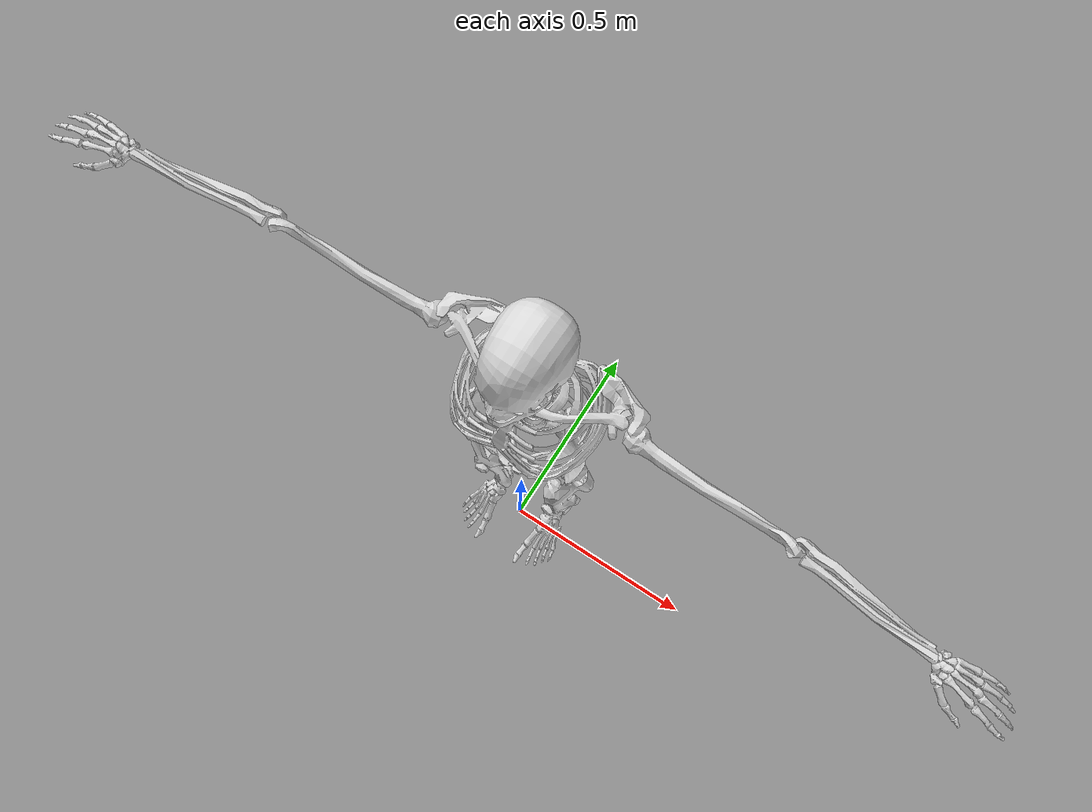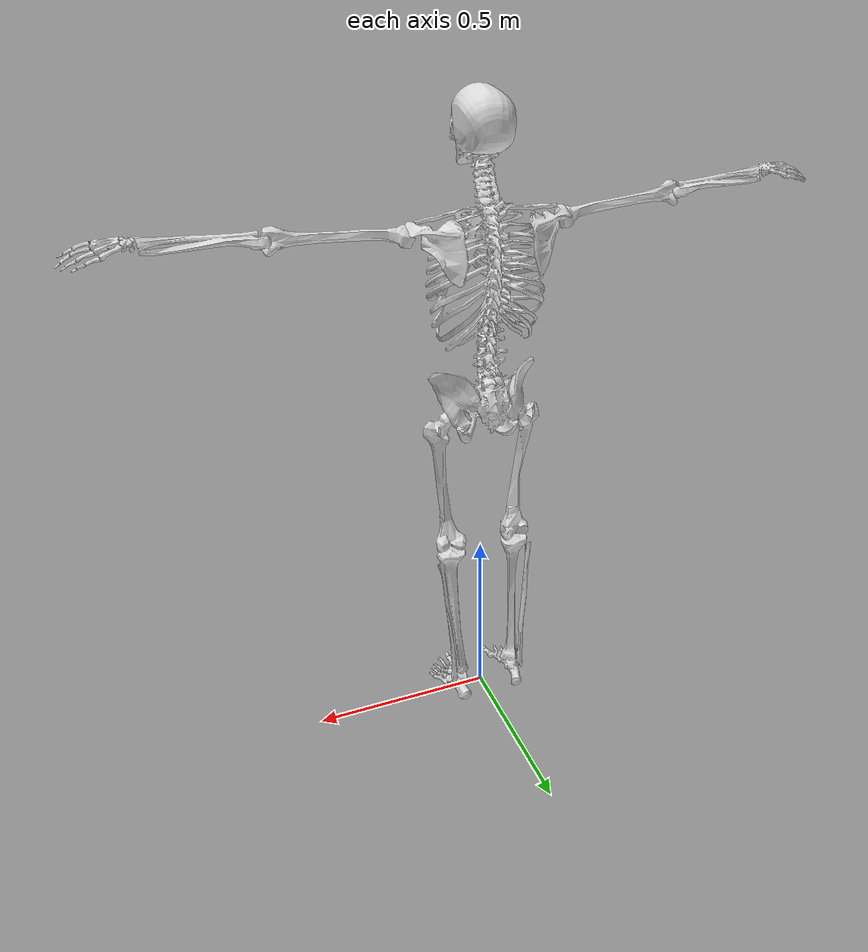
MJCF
<mujoco model="rig">
  <compiler coordinate="local" angle="degree" meshdir="../mesh/bio"/>
  <default>
    <joint damping="0.0" armature="0.01" stiffness="0" limited="true" />
    <geom rgba="0.85 0.85 0.85 1" contype="2" conaffinity="1" condim="3" />
  </default>
  <asset>
    <texture type="skybox" builtin="gradient" rgb1=".4 .5 .6" rgb2="0 0 0" width="100" height="100" />
    <texture builtin="checker" height="100" name="texplane" rgb1="0 0 0" rgb2="0.8 0.8 0.8" type="2d" width="100" />
    <material name="MatPlane" reflectance="0.5" shininess="1" specular="1" texrepeat="60 60" texture="texplane" />
    <material name="MatBone" rgba="0.9 0.9 0.9 1" />
    <mesh name="Pelvis_mesh" file="Pelvis.obj"/>
    <mesh name="Torso_mesh" file="Torso.obj" scale="1 1 1" />
    <mesh name="Spine_mesh" file="Spine.obj" scale="1 1 1" />
    <mesh name="Neck_mesh" file="Neck.obj" scale="1 1 1" />
    <mesh name="Skull_mesh" file="Skull.obj" scale="1 1 1" />
    <mesh name="L_Shoulder_mesh" file="L_Shoulder.obj" scale="1 1 1" />
    <mesh name="R_Shoulder_mesh" file="R_Shoulder.obj" scale="1 1 1" />
    <mesh name="L_Humerus_mesh" file="L_Humerus.obj" scale="1 1 1" />
    <mesh name="R_Humerus_mesh" file="R_Humerus.obj" scale="1 1 1" />
    <mesh name="L_Radius_mesh" file="L_Radius.obj" scale="1 1 1" />
    <mesh name="R_Radius_mesh" file="R_Radius.obj" scale="1 1 1" />
    <mesh name="L_Hand_mesh" file="L_Hand.obj" scale="1 1 1" />
    <mesh name="R_Hand_mesh" file="R_Hand.obj" scale="1 1 1" />
    <mesh name="L_Femur_mesh" file="L_Femur.obj" scale="1 1 1" />
    <mesh name="R_Femur_mesh" file="R_Femur.obj" scale="1 1 1" />
    <mesh name="L_Tibia_mesh" file="L_Tibia.obj" scale="1 1 1" />
    <mesh name="R_Tibia_mesh" file="R_Tibia.obj" scale="1 1 1" />
    <mesh name="L_Talus_mesh" file="L_Talus.obj" scale="1 1 1" />
    <mesh name="R_Talus_mesh" file="R_Talus.obj" scale="1 1 1" />
    <mesh name="L_FootThumb_mesh" file="L_FootThumb.obj" scale="1 1 1" />
    <mesh name="R_FootThumb_mesh" file="R_FootThumb.obj" scale="1 1 1" />
    <mesh name="L_FootPinky_mesh" file="L_FootPinky.obj" scale="1 1 1" />
    <mesh name="R_FootPinky_mesh" file="R_FootPinky.obj" scale="1 1 1" />
  </asset>
  <worldbody>

    <body name="Pelvis" pos="0 0.0308 0.9809" euler="90 0 0">
      <freejoint name="Pelvis" />
      <geom name="Pelvis_geom" type="box" size="0.104125 0.072683 0.064684" pos="0 0 0" mass="3.8" rgba="0 0 0 0" group="1" contype="2" conaffinity="1" />
      <geom name="Pelvis_visual" type="mesh" mesh="Pelvis_mesh" material="MatBone" contype="0" conaffinity="0" pos="0 0 0" euler="0 0 0" />
      <body name="Spine" pos="0 0.0866 -0.0126" euler="0 0 0">
        <joint name="Spine_x" type="hinge" axis="1 0 0" stiffness="1000" damping="100" armature="0.02" range="-30 60" />
        <joint name="Spine_y" type="hinge" axis="0 1 0" stiffness="1000" damping="100" armature="0.02" range="-30 30" />
        <joint name="Spine_z" type="hinge" axis="0 0 1" stiffness="1000" damping="100" armature="0.02" range="-20 20" />
        <geom name="Spine_geom" type="box" size="0.058525 0.048794 0.049209" mass="3" rgba="0 0 0 0" group="1" contype="2" conaffinity="1" />
        <geom name="Spine_visual" type="mesh" mesh="Spine_mesh" material="MatBone" contype="0" conaffinity="0" pos="0 0 0" />

        <body name="Torso" pos="0 0.1086 -0.0064" euler="0 0 0">
          <joint name="Torso_x" type="hinge" axis="1 0 0" stiffness="1000" damping="100" armature="0.02" range="-30 60" />
          <joint name="Torso_y" type="hinge" axis="0 1 0" stiffness="1000" damping="100" armature="0.02" range="-30 30" />
          <joint name="Torso_z" type="hinge" axis="0 0 1" stiffness="1000" damping="100" armature="0.02" range="-20 20" />
          <geom name="Torso_geom" type="box" size="0.089909 0.109027 0.066871" mass="9.6" rgba="0 0 0 0" group="1" contype="2" conaffinity="1" />
          <geom name="Torso_visual" type="mesh" mesh="Torso_mesh" material="MatBone" contype="0" conaffinity="0" pos="0 0 0" />

          <body name="Neck" pos="0 0.3083 0.0062" euler="0 0 0">
            <joint name="Neck_x" type="hinge" axis="1 0 0" stiffness="500" damping="50" armature="0.02" range="-30 45" />
            <joint name="Neck_y" type="hinge" axis="0 1 0" stiffness="500" damping="50" armature="0.02" range="-30 45" />
            <joint name="Neck_z" type="hinge" axis="0 0 1" stiffness="500" damping="50" armature="0.02" range="-30 120" />
            <geom name="Neck_geom" type="box" size="0.039657 0.036389 0.032590" mass="0.244" rgba="0 0 0 0" group="1" contype="2" conaffinity="1" />
            <geom name="Neck_visual" type="mesh" mesh="Neck_mesh" material="MatBone" contype="0" conaffinity="0" pos="0 0 0" />

            <body name="Head" pos="0 0.0808 0.035" euler="0 0 0">
              <joint name="Head_x" type="hinge" axis="1 0 0" stiffness="500" damping="50" armature="0.02" range="-30 45" />
              <joint name="Head_y" type="hinge" axis="0 1 0" stiffness="500" damping="50" armature="0.02" range="-30 45" />
              <joint name="Head_z" type="hinge" axis="0 0 1" stiffness="500" damping="50" armature="0.02" range="-30 120" />
              <geom name="Head_geom" type="box" size="0.056457 0.057178 0.058313" pos="0 0.1 0" mass="1" rgba="0 0 0 0" group="1" contype="2" conaffinity="1" />
              <geom name="Head_visual" type="mesh" mesh="Skull_mesh" material="MatBone" contype="0" conaffinity="0" pos="0 0 0" />
            </body>
          </body>

          <body name="ShoulderL" pos="0.0147 0.2774 0.0117" euler="0 0 0">
            <joint name="L_Shoulder_x" type="hinge" axis="1 0 0" stiffness="500" damping="50" armature="0.01" range="-30 30" />
            <joint name="L_Shoulder_y" type="hinge" axis="0 1 0" stiffness="500" damping="50" armature="0.01" range="-30 30" />
            <joint name="L_Shoulder_z" type="hinge" axis="0 0 1" stiffness="500" damping="50" armature="0.01" range="-30 30" />
            <geom name="ShoulderL_geom" type="capsule" fromto="0 0 0 0.1848 -0.0185 0.0028" size="0.0517" mass="0.718" rgba="0 0 0 0" group="1" contype="2" conaffinity="1" />
            <geom name="ShoulderL_visual" type="mesh" mesh="L_Shoulder_mesh" material="MatBone" contype="0" conaffinity="0" pos="0 0 0" />

            <body name="ArmL" pos="0.1848 -0.0185 0.0028" euler="0 0 0">
              <joint name="L_Elbow_x" type="hinge" axis="1 0 0" stiffness="500" damping="50" armature="0.01" range="-120 120" />
              <joint name="L_Elbow_y" type="hinge" axis="0 1 0" stiffness="500" damping="50" armature="0.01" range="-120 120" />
              <joint name="L_Elbow_z" type="hinge" axis="0 0 1" stiffness="500" damping="50" armature="0.01" range="-120 120" />
              <geom name="ArmL_geom" type="capsule" fromto="0 0 0 0.3239 0.0257 0.0248" size="0.0405" mass="0.6" rgba="0 0 0 0" group="1" contype="2" conaffinity="1" />
              <geom name="ArmL_visual" type="mesh" mesh="L_Humerus_mesh" material="MatBone" contype="0" conaffinity="0" pos="0 0 0" />

              <body name="ForeArmL" pos="0.3239 0.0257 0.0248" euler="0 0 0">
                <joint name="ForeArmL_y" type="hinge" axis="0 1 0" stiffness="500" damping="50" armature="0.01" range="-150 0" />
                <geom name="ForeArmL_geom" type="capsule" fromto="0 0 0 0.2868 0.0087 0.0299" size="0.0318" mass="0.3" rgba="0 0 0 0" group="1" contype="2" conaffinity="1" />
                <geom name="ForeArmL_visual" type="mesh" mesh="L_Radius_mesh" material="MatBone" contype="0" conaffinity="0" pos="0 0 0" />

                <body name="HandL" pos="0.2868 0.0087 0.0299" euler="0 0 0">
                    <joint name="HandL_x" type="hinge" axis="1 0 0" stiffness="300" damping="30" armature="0.01" range="-40 45" />
                    <joint name="HandL_y" type="hinge" axis="0 1 0" stiffness="300" damping="30" armature="0.01" range="-40 45" />
                    <joint name="HandL_z" type="hinge" axis="0 0 1" stiffness="300" damping="30" armature="0.01" range="-40 45" />
                  <geom name="HandL_geom" type="box" size="0.0585 0.0158 0.0538" mass="0.1" rgba="0.2 0.7 0.9 0" group="1" contype="2" conaffinity="1" />
                  <geom name="HandL_visual" type="mesh" mesh="L_Hand_mesh" material="MatBone" contype="0" conaffinity="0" pos="0 0 0" />
                </body>
              </body>
            </body>
          </body>

          <body name="ShoulderR" pos="-0.0147 0.2774 0.0117" euler="0 0 0">
            <joint name="R_Shoulder_x" type="hinge" axis="1 0 0" stiffness="500" damping="50" armature="0.01"  range="-30 30" />
            <joint name="R_Shoulder_y" type="hinge" axis="0 1 0" stiffness="500" damping="50" armature="0.01"  range="-30 30" />
            <joint name="R_Shoulder_z" type="hinge" axis="0 0 1" stiffness="500" damping="50" armature="0.01"  range="-30 30" />
            <geom name="ShoulderR_geom" type="capsule" fromto="0 0 0 -0.1848 -0.0185 0.0028" size="0.0531" mass="0.718" rgba="0 0 0 0" group="1" contype="2" conaffinity="1" />
            <geom name="ShoulderR_visual" type="mesh" mesh="R_Shoulder_mesh" material="MatBone" contype="0" conaffinity="0" pos="0 0 0" />

            <body name="ArmR" pos="-0.1848 -0.0185 0.0028" euler="0 0 0">
              <joint name="R_Elbow_x" type="hinge" axis="1 0 0" stiffness="500" damping="50" armature="0.01"  range="-120 120" />
              <joint name="R_Elbow_y" type="hinge" axis="0 1 0" stiffness="500" damping="50" armature="0.01"  range="-120 120" />
              <joint name="R_Elbow_z" type="hinge" axis="0 0 1" stiffness="500" damping="50" armature="0.01"  range="-120 120" />
              <geom name="ArmR_geom" type="capsule" fromto="0 0 0 -0.3239 0.0257 0.0248" size="0.0408" mass="0.6" rgba="0 0 0 0" group="1" contype="2" conaffinity="1" />
              <geom name="ArmR_visual" type="mesh" mesh="R_Humerus_mesh" material="MatBone" contype="0" conaffinity="0" pos="0 0 0" />

              <body name="ForeArmR" pos="-0.3239 0.0257 0.0248" euler="0 0 0">
                <joint name="ForeArmR_y" type="hinge" axis="0 1 0" stiffness="500" damping="50" armature="0.01"  range="0 150" />
                <geom name="ForeArmR_geom" type="capsule" fromto="0 0 0 -0.2868 0.0083 0.0299" size="0.0326" mass="0.3" rgba="0 0 0 0" group="1" contype="2" conaffinity="1" />
                <geom name="ForeArmR_visual" type="mesh" mesh="R_Radius_mesh" material="MatBone" contype="0" conaffinity="0" pos="0 0 0" />

                <body name="HandR" pos="-0.2868 0.0083 0.0299" euler="0 0 0">
                    <joint name="HandR_x" type="hinge" axis="1 0 0" stiffness="300" damping="30" armature="0.01"  range="-40 45" />
                    <joint name="HandR_y" type="hinge" axis="0 1 0" stiffness="300" damping="30" armature="0.01"  range="-40 45" />
                    <joint name="HandR_z" type="hinge" axis="0 0 1" stiffness="300" damping="30" armature="0.01"  range="-40 45" />
                  <geom name="HandR_geom" type="box" size="0.0569 0.0164 0.0546" mass="0.1" rgba="0.2 0.7 0.9 0" group="1" contype="2" conaffinity="1" />
                  <geom name="HandR_visual" type="mesh" mesh="R_Hand_mesh" material="MatBone" contype="0" conaffinity="0" pos="0 0 0" />
                </body>
              </body>
            </body>
          </body>
        </body>

      </body>

      <body name="FemurL" pos="0.0903 -0.0472 0.0192" euler="0 0 0">
        <joint name="L_Hip_x" type="hinge" axis="1 0 0" stiffness="800" damping="80" armature="0.01" range="-120 120" />
        <joint name="L_Hip_y" type="hinge" axis="0 1 0" stiffness="800" damping="80" armature="0.01" range="-120 120" />
        <joint name="L_Hip_z" type="hinge" axis="0 0 1" stiffness="800" damping="80" armature="0.01" range="-120 120" />
        <geom name="FemurL_geom" type="capsule" fromto="0 0 0 0.0092 -0.395 0.0013" size="0.0615" mass="1.5" rgba="0 0 0 0" group="1" contype="2" conaffinity="1" />
        <geom name="FemurL_visual" type="mesh" mesh="L_Femur_mesh" material="MatBone" contype="0" conaffinity="0" pos="0 0 0" />

        <body name="TibiaL" pos="0.0092 -0.395 0.0013" euler="0 0 0">
          <joint name="L_Knee" type="hinge" axis="1 0 0" stiffness="800" damping="80" armature="0.01" range="0 160" />
          <geom name="TibiaL_geom" type="capsule" fromto="0 0 0 -0.0195 -0.4611 -0.0316" size="0.0541" mass="1.2" rgba="0 0 0 0" group="1" contype="2" conaffinity="1" />
          <geom name="TibiaL_visual" type="mesh" mesh="L_Tibia_mesh" material="MatBone" contype="0" conaffinity="0" pos="0 0 0" />

          <body name="TalusL" pos="-0.0195 -0.4611 -0.0316" euler="0 0 0">
            <joint name="L_Ankle_x" type="hinge" axis="1 0 0" stiffness="800" damping="80" armature="0.01" range="-45 45" />
            <joint name="L_Ankle_y" type="hinge" axis="0 1 0" stiffness="800" damping="80" armature="0.01" range="-45 45" />
            <joint name="L_Ankle_z" type="hinge" axis="0 0 1" stiffness="800" damping="80" armature="0.01" range="-45 45" />
            <geom name="TalusL_geom" type="box" size="0.0483 0.0464 0.085" mass="0.074" rgba="0 0 0 0" group="1" contype="2" conaffinity="1" />
            <geom name="TalusL_visual" type="mesh" mesh="L_Talus_mesh" material="MatBone" contype="0" conaffinity="0" pos="0 0 0" />

            <body name="FootThumbL" pos="0.0415 -0.066 0.0913" euler="0 0 0">
              <joint name="L_ToeThumb" type="hinge" axis="1 0 0" stiffness="500" damping="50" armature="0.01" range="-45 45" />
              <geom name="FootThumbL_geom" type="box" size="0.0478 0.02 0.0496" mass="0.1" rgba="0 0 0 0" group="1" contype="2" conaffinity="1" />
              <geom name="FootThumbL_visual" type="mesh" mesh="L_FootThumb_mesh" material="MatBone" contype="0" conaffinity="0" pos="0 0 0" />
            </body>

            <body name="FootPinkyL" pos="-0.0044 -0.0658 0.1095" euler="0 0 0">
              <joint name="L_ToePinky" type="hinge" axis="1 0 0" stiffness="500" damping="50" armature="0.01" range="-45 45" />
              <geom name="FootPinkyL_geom" type="box" size="0.0478 0.02 0.0496" mass="0.1" rgba="0 0 0 0" group="1" contype="2" conaffinity="1" />
              <geom name="FootPinkyL_visual" type="mesh" mesh="L_FootPinky_mesh" material="MatBone" contype="0" conaffinity="0" pos="0 0 0" />
            </body>
          </body>
        </body>
      </body>

      <body name="FemurR" pos="-0.0903 -0.0472 0.0192" euler="0 0 0">
        <joint name="R_Hip_x" type="hinge" axis="1 0 0" stiffness="800" damping="80" armature="0.01" range="-120 120" />
        <joint name="R_Hip_y" type="hinge" axis="0 1 0" stiffness="800" damping="80" armature="0.01" range="-120 120" />
        <joint name="R_Hip_z" type="hinge" axis="0 0 1" stiffness="800" damping="80" armature="0.01" range="-120 120" />
        <geom name="FemurR_geom" type="capsule" fromto="0 0 0 -0.0092 -0.395 0.0013" size="0.0606" mass="1.5" rgba="0 0 0 0" group="1" contype="2" conaffinity="1" />
        <geom name="FemurR_visual" type="mesh" mesh="R_Femur_mesh" material="MatBone" contype="0" conaffinity="0" pos="0 0 0" />

        <body name="TibiaR" pos="-0.0092 -0.395 0.0013" euler="0 0 0">
          <joint name="R_Knee" type="hinge" axis="1 0 0" stiffness="800" damping="80" armature="0.01" range="0 160" />
          <geom name="TibiaR_geom" type="capsule" fromto="0 0 0 0.0195 -0.4611 -0.0316" size="0.0541" mass="1.2" rgba="0 0 0 0" group="1" contype="2" conaffinity="1" />
          <geom name="TibiaR_visual" type="mesh" mesh="R_Tibia_mesh" material="MatBone" contype="0" conaffinity="0" pos="0 0 0" />

          <body name="TalusR" pos="0.0195 -0.4611 -0.0316" euler="0 0 0">
            <joint name="R_Ankle_x" type="hinge" axis="1 0 0" stiffness="800" damping="80" armature="0.01" range="-45 45" />
            <joint name="R_Ankle_y" type="hinge" axis="0 1 0" stiffness="800" damping="80" armature="0.01" range="-45 45" />
            <joint name="R_Ankle_z" type="hinge" axis="0 0 1" stiffness="800" damping="80" armature="0.01" range="-45 45" />
            <geom name="TalusR_geom" type="box" size="0.0483 0.0478 0.0865" mass="0.074" rgba="0 0 0 0" group="1" contype="2" conaffinity="1" />
            <geom name="TalusR_visual" type="mesh" mesh="R_Talus_mesh" material="MatBone" contype="0" conaffinity="0" pos="0 0 0" />

            <body name="FootThumbR" pos="0.0019 -0.0575 0.1111" euler="0 0 0">
              <joint name="R_ToeThumb" type="hinge" axis="1 0 0" stiffness="500" damping="50" armature="0.01" range="-45 45" />
              <geom name="FootThumbR_geom" type="box" size="0.0479 0.0216 0.0493" mass="0.1" rgba="0 0 0 0" group="1" contype="2" conaffinity="1" />
              <geom name="FootThumbR_visual" type="mesh" mesh="R_FootThumb_mesh" material="MatBone" contype="0" conaffinity="0" pos="0 0 0" />
            </body>

            <body name="FootPinkyR" pos="-0.0427 -0.0634 0.0913" euler="0 0 0">
              <joint name="R_ToePinky" type="hinge" axis="1 0 0" stiffness="500" damping="50" armature="0.01" range="-45 45" />
              <geom name="FootPinkyR_geom" type="box" size="0.0479 0.0216 0.0493" mass="0.1" rgba="0 0 0 0" group="1" contype="2" conaffinity="1" />
              <geom name="FootPinkyR_visual" type="mesh" mesh="R_FootPinky_mesh" material="MatBone" contype="0" conaffinity="0" pos="0 0 0" />
            </body>
          </body>
        </body>
      </body>
    </body>
  </worldbody>

  <actuator>
    <motor name="Spine_x" joint="Spine_x" gear="500"/>
    <motor name="Spine_y" joint="Spine_y" gear="500"/>
    <motor name="Spine_z" joint="Spine_z" gear="500"/>
    <motor name="Torso_x" joint="Torso_x" gear="500"/>
    <motor name="Torso_y" joint="Torso_y" gear="500"/>
    <motor name="Torso_z" joint="Torso_z" gear="500"/>
    <motor name="Neck_x" joint="Neck_x" gear="500"/>
    <motor name="Neck_y" joint="Neck_y" gear="500"/>
    <motor name="Neck_z" joint="Neck_z" gear="500"/>
    <motor name="Head_x" joint="Head_x" gear="500"/>
    <motor name="Head_y" joint="Head_y" gear="500"/>
    <motor name="Head_z" joint="Head_z" gear="500"/>
    <motor name="L_Shoulder_x" joint="L_Shoulder_x" gear="500"/>
    <motor name="L_Shoulder_y" joint="L_Shoulder_y" gear="500"/>
    <motor name="L_Shoulder_z" joint="L_Shoulder_z" gear="500"/>
    <motor name="L_Elbow_x" joint="L_Elbow_x" gear="500"/>
    <motor name="L_Elbow_y" joint="L_Elbow_y" gear="500"/>
    <motor name="L_Elbow_z" joint="L_Elbow_z" gear="500"/>
    <motor name="ForeArmL_y" joint="ForeArmL_y" gear="500"/>
    <motor name="HandL_x" joint="HandL_x" gear="500"/>
    <motor name="HandL_y" joint="HandL_y" gear="500"/>
    <motor name="HandL_z" joint="HandL_z" gear="500"/>

    <motor name="R_Shoulder_x" joint="R_Shoulder_x" gear="500"/>
    <motor name="R_Shoulder_y" joint="R_Shoulder_y" gear="500"/>
    <motor name="R_Shoulder_z" joint="R_Shoulder_z" gear="500"/>
    <motor name="R_Elbow_x" joint="R_Elbow_x" gear="500"/>
    <motor name="R_Elbow_y" joint="R_Elbow_y" gear="500"/>
    <motor name="R_Elbow_z" joint="R_Elbow_z" gear="500"/>
    <motor name="ForeArmR_y" joint="ForeArmR_y" gear="500"/>
    <motor name="HandR_x" joint="HandR_x" gear="500"/>
    <motor name="HandR_y" joint="HandR_y" gear="500"/>
    <motor name="HandR_z" joint="HandR_z" gear="500"/>

    <motor name="L_Hip_x" joint="L_Hip_x" gear="500"/>
    <motor name="L_Hip_y" joint="L_Hip_y" gear="500"/>
    <motor name="L_Hip_z" joint="L_Hip_z" gear="500"/>
    <motor name="L_Knee" joint="L_Knee" gear="500"/>
    <motor name="L_Ankle_x" joint="L_Ankle_x" gear="500"/>
    <motor name="L_Ankle_y" joint="L_Ankle_y" gear="500"/>
    <motor name="L_Ankle_z" joint="L_Ankle_z" gear="500"/>
    <motor name="L_ToeThuml" joint="L_ToeThumb" gear="500"/>
    <motor name="L_ToePinky" joint="L_ToePinky" gear="500"/>

    <motor name="R_Hip_x" joint="R_Hip_x" gear="500"/>
    <motor name="R_Hip_y" joint="R_Hip_y" gear="500"/>
    <motor name="R_Hip_z" joint="R_Hip_z" gear="500"/>
    <motor name="R_Knee" joint="R_Knee" gear="500"/>
    <motor name="R_Ankle_x" joint="R_Ankle_x" gear="500"/>
    <motor name="R_Ankle_y" joint="R_Ankle_y" gear="500"/>
    <motor name="R_Ankle_z" joint="R_Ankle_z" gear="500"/>
    <motor name="R_ToeThuml" joint="R_ToeThumb" gear="500"/>
    <motor name="R_ToePinky" joint="R_ToePinky" gear="500"/>

  </actuator>
  <contact>
    <exclude body1="Torso" body2="Neck"/>
    <exclude body1="Head" body2="Neck"/>
    <exclude body1="TibiaL" body2="TalusL"/>
    <exclude body1="TibiaL" body2="FootThumbL"/>
    <exclude body1="TibiaL" body2="FootPinkyL"/>

    <exclude body1="TibiaR" body2="TalusR"/>
    <exclude body1="TibiaR" body2="FootThumbR"/>
    <exclude body1="TibiaR" body2="FootPinkyR"/>

    <exclude body1="ShoulderL" body2="Neck"/>
    <exclude body1="ShoulderR" body2="Neck"/>
  </contact>
  <sensor/>
  <size njmax="800" nconmax="800" />
</mujoco>
